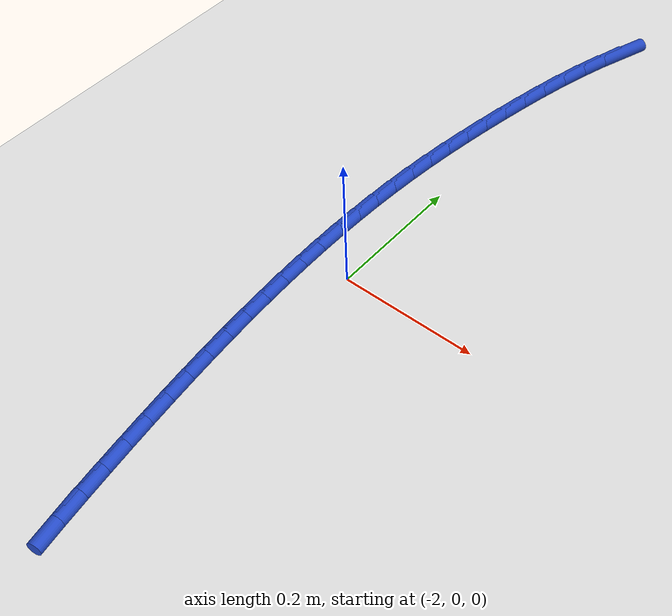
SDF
<sdf version="1.6">
 <world name="default">
  <model name="ground_plane">
   <static>1</static>
   <link name="link">
    <collision name="collision">
     <geometry><plane><normal>0 0 1</normal><size>100 100</size></plane></geometry>
     <surface><friction><ode><mu>100</mu><mu2>50</mu2></ode></friction></surface>
    </collision>
    <visual name="visual">
     <cast_shadows>0</cast_shadows>
     <geometry><plane><normal>0 0 1</normal><size>100 100</size></plane></geometry>
     <material>
      <script><uri>file://media/materials/scripts/gazebo.material</uri><name>Gazebo/WhiteGlow</name></script>
     </material>
    </visual>
   </link>
  </model>
  <model name="line">
   <link name="link_75">
    <pose>-1.9671322063927823 0.6259965050947585 0.01 0 1.57 1.232896841184195</pose>
    <collision name="collision">
     <geometry><cylinder><radius>0.01</radius><length>0.08</length></cylinder></geometry>
    </collision>
    <visual name="visual">
     <material>
      <script><name>Gazebo/Blue</name><uri>file://media/materials/scripts/gazebo.material</uri></script>
     </material>
     <geometry><cylinder><radius>0.01</radius><length>0.08</length></cylinder></geometry>
    </visual>
   </link>
   <link name="link_76">
    <pose>-1.9807039553693515 0.5873718498449996 0.01 0 1.57 1.2767495447201374</pose>
    <collision name="collision">
     <geometry><cylinder><radius>0.01</radius><length>0.08</length></cylinder></geometry>
    </collision>
    <visual name="visual">
     <material>
      <script><name>Gazebo/Blue</name><uri>file://media/materials/scripts/gazebo.material</uri></script>
     </material>
     <geometry><cylinder><radius>0.01</radius><length>0.08</length></cylinder></geometry>
    </visual>
   </link>
   <link name="link_77">
    <pose>-1.9927159267158623 0.5477055081586623 0.01 0 1.57 1.3131149060759828</pose>
    <collision name="collision">
     <geometry><cylinder><radius>0.01</radius><length>0.08</length></cylinder></geometry>
    </collision>
    <visual name="visual">
     <material>
      <script><name>Gazebo/Blue</name><uri>file://media/materials/scripts/gazebo.material</uri></script>
     </material>
     <geometry><cylinder><radius>0.01</radius><length>0.08</length></cylinder></geometry>
    </visual>
   </link>
   <link name="link_78">
    <pose>-2.0033359112198763 0.507408141354373 0.01 0 1.57 1.3429305500263078</pose>
    <collision name="collision">
     <geometry><cylinder><radius>0.01</radius><length>0.08</length></cylinder></geometry>
    </collision>
    <visual name="visual">
     <material>
      <script><name>Gazebo/Blue</name><uri>file://media/materials/scripts/gazebo.material</uri></script>
     </material>
     <geometry><cylinder><radius>0.01</radius><length>0.08</length></cylinder></geometry>
    </visual>
   </link>
   <link name="link_79">
    <pose>-2.0127316996689566 0.4668904107507575 0.01 0 1.57 1.3668787842963723</pose>
    <collision name="collision">
     <geometry><cylinder><radius>0.01</radius><length>0.08</length></cylinder></geometry>
    </collision>
    <visual name="visual">
     <material>
      <script><name>Gazebo/Blue</name><uri>file://media/materials/scripts/gazebo.material</uri></script>
     </material>
     <geometry><cylinder><radius>0.01</radius><length>0.08</length></cylinder></geometry>
    </visual>
   </link>
   <link name="link_80">
    <pose>-2.021071082850665 0.4265629776664411 0.01 0 1.57 1.3853984115390987</pose>
    <collision name="collision">
     <geometry><cylinder><radius>0.01</radius><length>0.08</length></cylinder></geometry>
    </collision>
    <visual name="visual">
     <material>
      <script><name>Gazebo/Blue</name><uri>file://media/materials/scripts/gazebo.material</uri></script>
     </material>
     <geometry><cylinder><radius>0.01</radius><length>0.08</length></cylinder></geometry>
    </visual>
   </link>
   <link name="link_81">
    <pose>-2.028521851531091 0.3868365033497588 0.01 0 1.57 1.3999150574991281</pose>
    <collision name="collision">
     <geometry><cylinder><radius>0.01</radius><length>0.08</length></cylinder></geometry>
    </collision>
    <visual name="visual">
     <material>
      <script><name>Gazebo/Blue</name><uri>file://media/materials/scripts/gazebo.material</uri></script>
     </material>
     <geometry><cylinder><radius>0.01</radius><length>0.08</length></cylinder></geometry>
    </visual>
   </link>
   <link name="link_82">
    <pose>-2.0352203910949385 0.3480188360722709 0.01 0 1.57 1.4152177218081117</pose>
    <collision name="collision">
     <geometry><cylinder><radius>0.01</radius><length>0.08</length></cylinder></geometry>
    </collision>
    <visual name="visual">
     <material>
      <script><name>Gazebo/Blue</name><uri>file://media/materials/scripts/gazebo.material</uri></script>
     </material>
     <geometry><cylinder><radius>0.01</radius><length>0.08</length></cylinder></geometry>
    </visual>
   </link>
   <link name="link_83">
    <pose>-2.041180770321427 0.3100173916394607 0.01 0 1.57 1.4323834085821854</pose>
    <collision name="collision">
     <geometry><cylinder><radius>0.01</radius><length>0.08</length></cylinder></geometry>
    </collision>
    <visual name="visual">
     <material>
      <script><name>Gazebo/Blue</name><uri>file://media/materials/scripts/gazebo.material</uri></script>
     </material>
     <geometry><cylinder><radius>0.01</radius><length>0.08</length></cylinder></geometry>
    </visual>
   </link>
   <link name="link_84">
    <pose>-2.0463872834441625 0.27264211180837145 0.01 0 1.57 1.4512542368026482</pose>
    <collision name="collision">
     <geometry><cylinder><radius>0.01</radius><length>0.08</length></cylinder></geometry>
    </collision>
    <visual name="visual">
     <material>
      <script><name>Gazebo/Blue</name><uri>file://media/materials/scripts/gazebo.material</uri></script>
     </material>
     <geometry><cylinder><radius>0.01</radius><length>0.08</length></cylinder></geometry>
    </visual>
   </link>
   <link name="link_85">
    <pose>-2.0508242246967514 0.2357029383360449 0.01 0 1.57 1.4716039217898549</pose>
    <collision name="collision">
     <geometry><cylinder><radius>0.01</radius><length>0.08</length></cylinder></geometry>
    </collision>
    <visual name="visual">
     <material>
      <script><name>Gazebo/Blue</name><uri>file://media/materials/scripts/gazebo.material</uri></script>
     </material>
     <geometry><cylinder><radius>0.01</radius><length>0.08</length></cylinder></geometry>
    </visual>
   </link>
   <link name="link_86">
    <pose>-2.0544758883127985 0.19900981297952416 0.01 0 1.57 1.4931350539523731</pose>
    <collision name="collision">
     <geometry><cylinder><radius>0.01</radius><length>0.08</length></cylinder></geometry>
    </collision>
    <visual name="visual">
     <material>
      <script><name>Gazebo/Blue</name><uri>file://media/materials/scripts/gazebo.material</uri></script>
     </material>
     <geometry><cylinder><radius>0.01</radius><length>0.08</length></cylinder></geometry>
    </visual>
   </link>
   <link name="link_87">
    <pose>-2.057326834351727 0.16237363619158257 0.01 0 1.57 1.5149298130749116</pose>
    <collision name="collision">
     <geometry><cylinder><radius>0.01</radius><length>0.08</length></cylinder></geometry>
    </collision>
    <visual name="visual">
     <material>
      <script><name>Gazebo/Blue</name><uri>file://media/materials/scripts/gazebo.material</uri></script>
     </material>
     <geometry><cylinder><radius>0.01</radius><length>0.08</length></cylinder></geometry>
    </visual>
   </link>
   <link name="link_88">
    <pose>-2.0593794889005794 0.12566974191192223 0.01 0 1.57 1.5358671797972034</pose>
    <collision name="collision">
     <geometry><cylinder><radius>0.01</radius><length>0.08</length></cylinder></geometry>
    </collision>
    <visual name="visual">
     <material>
      <script><name>Gazebo/Blue</name><uri>file://media/materials/scripts/gazebo.material</uri></script>
     </material>
     <geometry><cylinder><radius>0.01</radius><length>0.08</length></cylinder></geometry>
    </visual>
   </link>
   <link name="link_89">
    <pose>-2.06066513247328 0.08887752701900392 0.01 0 1.57 1.555820188643826</pose>
    <collision name="collision">
     <geometry><cylinder><radius>0.01</radius><length>0.08</length></cylinder></geometry>
    </collision>
    <visual name="visual">
     <material>
      <script><name>Gazebo/Blue</name><uri>file://media/materials/scripts/gazebo.material</uri></script>
     </material>
     <geometry><cylinder><radius>0.01</radius><length>0.08</length></cylinder></geometry>
    </visual>
   </link>
   <link name="link_90">
    <pose>-2.061217668657165 0.05198584845537807 0.01 0 1.57 -1.5668326027077852</pose>
    <collision name="collision">
     <geometry><cylinder><radius>0.01</radius><length>0.08</length></cylinder></geometry>
    </collision>
    <visual name="visual">
     <material>
      <script><name>Gazebo/Blue</name><uri>file://media/materials/scripts/gazebo.material</uri></script>
     </material>
     <geometry><cylinder><radius>0.01</radius><length>0.08</length></cylinder></geometry>
    </visual>
   </link>
   <link name="link_91">
    <pose>-2.061071001039571 0.014983563163595687 0.01 0 1.57 -1.5489280575588757</pose>
    <collision name="collision">
     <geometry><cylinder><radius>0.01</radius><length>0.08</length></cylinder></geometry>
    </collision>
    <visual name="visual">
     <material>
      <script><name>Gazebo/Blue</name><uri>file://media/materials/scripts/gazebo.material</uri></script>
     </material>
     <geometry><cylinder><radius>0.01</radius><length>0.08</length></cylinder></geometry>
    </visual>
   </link>
   <link name="link_92">
    <pose>-2.0602590332078345 -0.022140471913793133 0.01 0 1.57 -1.5320748568194251</pose>
    <collision name="collision">
     <geometry><cylinder><radius>0.01</radius><length>0.08</length></cylinder></geometry>
    </collision>
    <visual name="visual">
     <material>
      <script><name>Gazebo/Blue</name><uri>file://media/materials/scripts/gazebo.material</uri></script>
     </material>
     <geometry><cylinder><radius>0.01</radius><length>0.08</length></cylinder></geometry>
    </visual>
   </link>
   <link name="link_93">
    <pose>-2.058815668749292 -0.059397399834235955 0.01 0 1.57 -1.5162834128904807</pose>
    <collision name="collision">
     <geometry><cylinder><radius>0.01</radius><length>0.08</length></cylinder></geometry>
    </collision>
    <visual name="visual">
     <material>
      <script><name>Gazebo/Blue</name><uri>file://media/materials/scripts/gazebo.material</uri></script>
     </material>
     <geometry><cylinder><radius>0.01</radius><length>0.08</length></cylinder></geometry>
    </visual>
   </link>
   <link name="link_94">
    <pose>-2.0567748112512807 -0.09679836365518263 0.01 0 1.57 -1.5015590809598447</pose>
    <collision name="collision">
     <geometry><cylinder><radius>0.01</radius><length>0.08</length></cylinder></geometry>
    </collision>
    <visual name="visual">
     <material>
      <script><name>Gazebo/Blue</name><uri>file://media/materials/scripts/gazebo.material</uri></script>
     </material>
     <geometry><cylinder><radius>0.01</radius><length>0.08</length></cylinder></geometry>
    </visual>
   </link>
   <link name="link_95">
    <pose>-2.054170364301135 -0.13435450643408223 0.01 0 1.57 -1.4879027256521564</pose>
    <collision name="collision">
     <geometry><cylinder><radius>0.01</radius><length>0.08</length></cylinder></geometry>
    </collision>
    <visual name="visual">
     <material>
      <script><name>Gazebo/Blue</name><uri>file://media/materials/scripts/gazebo.material</uri></script>
     </material>
     <geometry><cylinder><radius>0.01</radius><length>0.08</length></cylinder></geometry>
    </visual>
   </link>
   <link name="link_96">
    <pose>-2.0510362314861927 -0.1720769712283839 0.01 0 1.57 -1.4753112795965233</pose>
    <collision name="collision">
     <geometry><cylinder><radius>0.01</radius><length>0.08</length></cylinder></geometry>
    </collision>
    <visual name="visual">
     <material>
      <script><name>Gazebo/Blue</name><uri>file://media/materials/scripts/gazebo.material</uri></script>
     </material>
     <geometry><cylinder><radius>0.01</radius><length>0.08</length></cylinder></geometry>
    </visual>
   </link>
   <link name="link_97">
    <pose>-2.0474063163937903 -0.2099769010955367 0.01 0 1.57 -1.4637782804214876</pose>
    <collision name="collision">
     <geometry><cylinder><radius>0.01</radius><length>0.08</length></cylinder></geometry>
    </collision>
    <visual name="visual">
     <material>
      <script><name>Gazebo/Blue</name><uri>file://media/materials/scripts/gazebo.material</uri></script>
     </material>
     <geometry><cylinder><radius>0.01</radius><length>0.08</length></cylinder></geometry>
    </visual>
   </link>
   <link name="link_98">
    <pose>-2.0433145226112637 -0.24806543909299056 0.01 0 1.57 -1.4532943760455075</pose>
    <collision name="collision">
     <geometry><cylinder><radius>0.01</radius><length>0.08</length></cylinder></geometry>
    </collision>
    <visual name="visual">
     <material>
      <script><name>Gazebo/Blue</name><uri>file://media/materials/scripts/gazebo.material</uri></script>
     </material>
     <geometry><cylinder><radius>0.01</radius><length>0.08</length></cylinder></geometry>
    </visual>
   </link>
   <link name="link_99">
    <pose>-2.0387947537259485 -0.28635372827819283 0.01 0 1.57 -1.443847791171324</pose>
    <collision name="collision">
     <geometry><cylinder><radius>0.01</radius><length>0.08</length></cylinder></geometry>
    </collision>
    <visual name="visual">
     <material>
      <script><name>Gazebo/Blue</name><uri>file://media/materials/scripts/gazebo.material</uri></script>
     </material>
     <geometry><cylinder><radius>0.01</radius><length>0.08</length></cylinder></geometry>
    </visual>
   </link>
   <link name="link_100">
    <pose>-2.033880913325183 -0.3248529117085936 0.01 0 1.57 -1.4354247505283497</pose>
    <collision name="collision">
     <geometry><cylinder><radius>0.01</radius><length>0.08</length></cylinder></geometry>
    </collision>
    <visual name="visual">
     <material>
      <script><name>Gazebo/Blue</name><uri>file://media/materials/scripts/gazebo.material</uri></script>
     </material>
     <geometry><cylinder><radius>0.01</radius><length>0.08</length></cylinder></geometry>
    </visual>
   </link>
   <link name="link_101">
    <pose>-2.028606904996302 -0.36357413244164183 0.01 0 1.57 -1.4280098566080592</pose>
    <collision name="collision">
     <geometry><cylinder><radius>0.01</radius><length>0.08</length></cylinder></geometry>
    </collision>
    <visual name="visual">
     <material>
      <script><name>Gazebo/Blue</name><uri>file://media/materials/scripts/gazebo.material</uri></script>
     </material>
     <geometry><cylinder><radius>0.01</radius><length>0.08</length></cylinder></geometry>
    </visual>
   </link>
   <link name="link_102">
    <pose>-2.023006632326643 -0.4025285335347868 0.01 0 1.57 -1.4215481683140312</pose>
    <collision name="collision">
     <geometry><cylinder><radius>0.01</radius><length>0.08</length></cylinder></geometry>
    </collision>
    <visual name="visual">
     <material>
      <script><name>Gazebo/Blue</name><uri>file://media/materials/scripts/gazebo.material</uri></script>
     </material>
     <geometry><cylinder><radius>0.01</radius><length>0.08</length></cylinder></geometry>
    </visual>
   </link>
   <link name="link_103">
    <pose>-2.017112656142543 -0.4417259904370665 0.01 0 1.57 -1.4130625610739236</pose>
    <collision name="collision">
     <geometry><cylinder><radius>0.01</radius><length>0.08</length></cylinder></geometry>
    </collision>
    <visual name="visual">
     <material>
      <script><name>Gazebo/Blue</name><uri>file://media/materials/scripts/gazebo.material</uri></script>
     </material>
     <geometry><cylinder><radius>0.01</radius><length>0.08</length></cylinder></geometry>
    </visual>
   </link>
   <link name="link_104">
    <pose>-2.0108534948650707 -0.4810781593103191 0.01 0 1.57 -1.3974720767289008</pose>
    <collision name="collision">
     <geometry><cylinder><radius>0.01</radius><length>0.08</length></cylinder></geometry>
    </collision>
    <visual name="visual">
     <material>
      <script><name>Gazebo/Blue</name><uri>file://media/materials/scripts/gazebo.material</uri></script>
     </material>
     <geometry><cylinder><radius>0.01</radius><length>0.08</length></cylinder></geometry>
    </visual>
   </link>
  </model>
 </world>
</sdf>
